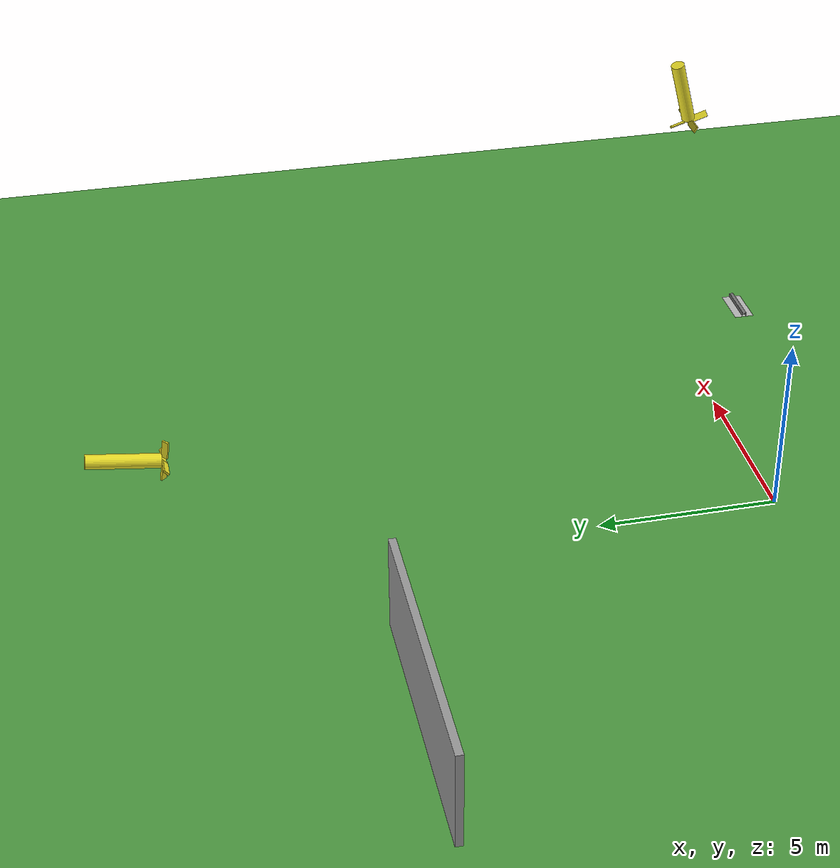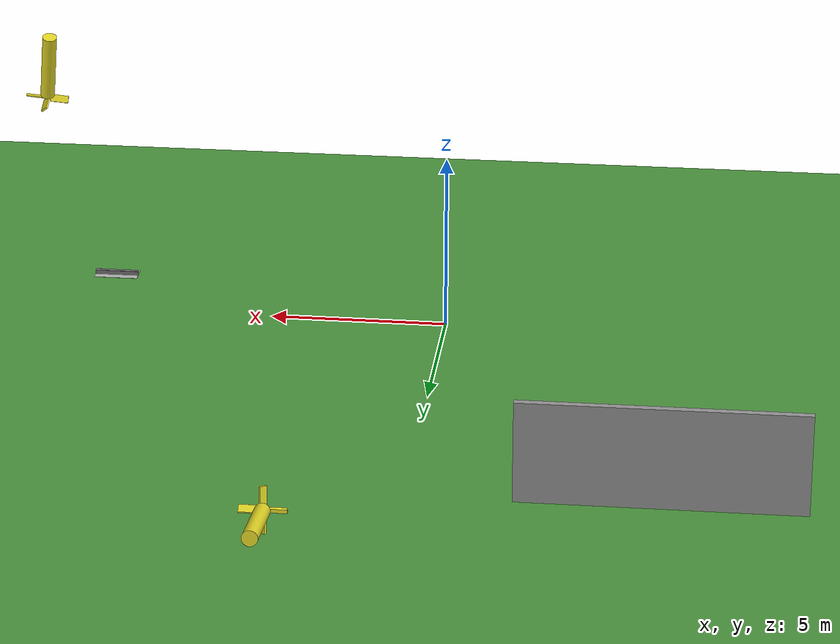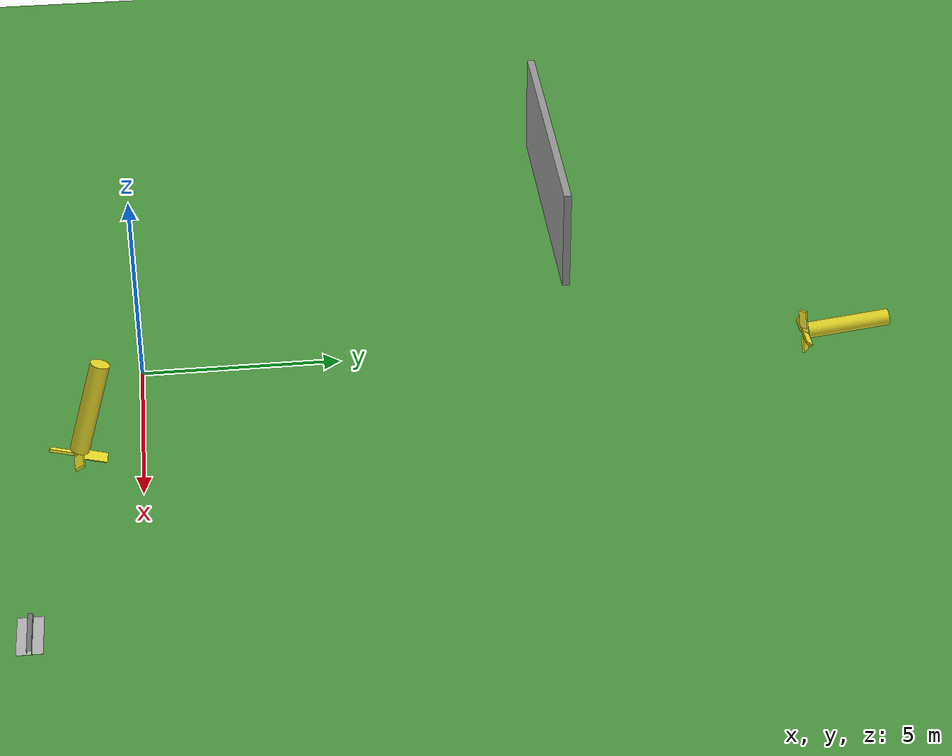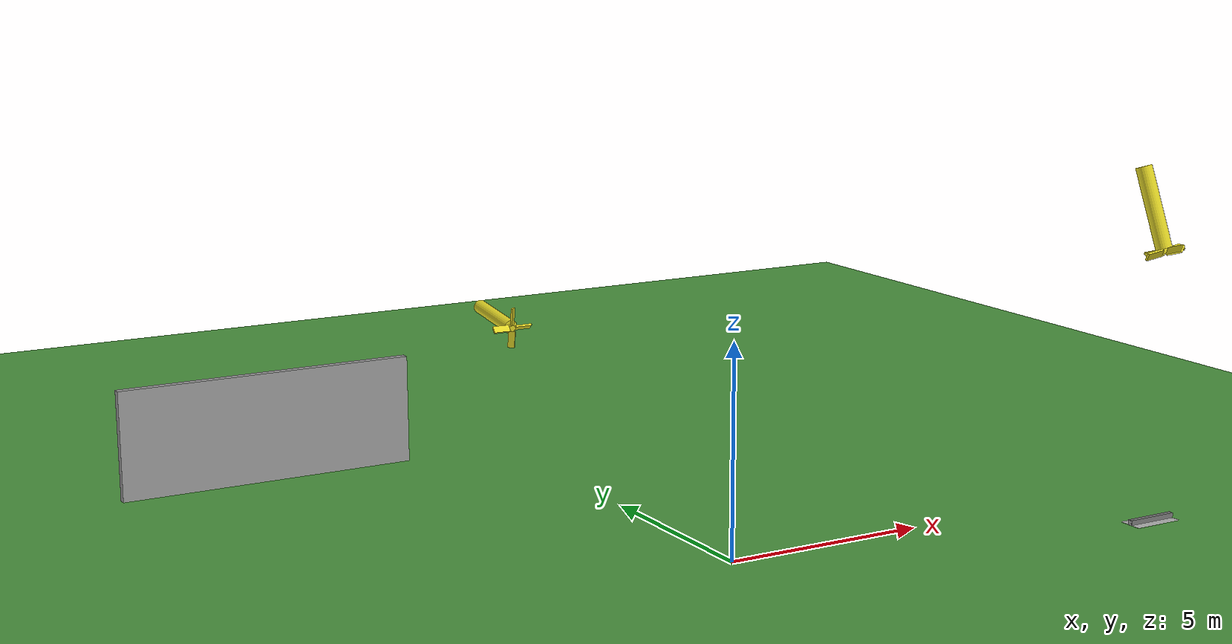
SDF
<sdf version="1.6">
 <world name="default">
  <light name="sun" type="directional">
   <pose>0 0 10 0 -0 0</pose>
   <diffuse>0.8 0.8 0.8 1</diffuse>
   <specular>0.2 0.2 0.2 1</specular>
   <attenuation>
    <range>1000</range>
    <constant>0.9</constant>
    <linear>0.01</linear>
    <quadratic>0.001</quadratic>
   </attenuation>
   <direction>-0.5 0.1 -0.9</direction>
  </light>
  <model name="ground_plane">
   <static>1</static>
   <link name="link">
    <collision name="collision">
     <geometry><plane><normal>0 0 1</normal><size>100 100</size></plane></geometry>
     <surface>
      <contact><collide_bitmask>65535</collide_bitmask></contact>
      <friction><ode><mu>100</mu><mu2>50</mu2></ode></friction>
     </surface>
    </collision>
    <visual name="visual">
     <cast_shadows>0</cast_shadows>
     <geometry><plane><normal>0 0 1</normal><size>100 100</size></plane></geometry>
     <material>
      <script><uri>file://media/materials/scripts/gazebo.material</uri><name>Gazebo/Grey</name></script>
     </material>
    </visual>
   </link>
  </model>
  <gravity>0 0 -9.8</gravity>
  <magnetic_field>6e-06 2.3e-05 -4.2e-05</magnetic_field>
  <atmosphere type="adiabatic"/>
  <physics name="default_physics" default="0" type="ode">
   <max_step_size>0.004</max_step_size>
   <real_time_factor>1</real_time_factor>
   <real_time_update_rate>250</real_time_update_rate>
  </physics>
  <scene><ambient>0.4 0.4 0.4 1</ambient><background>0.7 0.7 0.7 1</background><shadows>1</shadows></scene>
  <spherical_coordinates>
   <surface_model>EARTH_WGS84</surface_model>
   <latitude_deg>0</latitude_deg>
   <longitude_deg>0</longitude_deg>
   <elevation>0</elevation>
   <heading_deg>0</heading_deg>
  </spherical_coordinates>
  <model name="grass_plane">
   <static>1</static>
   <link name="link">
    <collision name="collision"><geometry><box><size>80 80 0.1</size></box></geometry></collision>
    <visual name="visual">
     <cast_shadows>0</cast_shadows>
     <geometry><box><size>80 80 0.1</size></box></geometry>
     <material>
      <script>
       <uri>model://grass_plane/materials/scripts</uri>
       <uri>model://grass_plane/materials/textures</uri>
       <name>vrc/grass</name>
      </script>
     </material>
    </visual>
   </link>
   <pose>-0.036934 0.015887 0 0 -0 0</pose>
  </model>
  <model name="frc2016_rockwall">
   <static>1</static>
   <link name="link">
    <inertial>
     <mass>10</mass>
     <pose>0 0 0.08974 0 -0 0</pose>
     <inertia><ixx>0.327091</ixx><ixy>0</ixy><ixz>0</ixz><iyy>1.37417</iyy><iyz>0</iyz><izz>1.64109</izz></inertia>
    </inertial>
    <visual name="platform">
     <pose>0 0 0.06432 0 -0 0</pose>
     <geometry><box><size>1.27 0.5969 0.003175</size></box></geometry>
    </visual>
    <collision name="platform">
     <pose>0 0 0.06432 0 -0 0</pose>
     <geometry><box><size>1.27 0.5969 0.003175</size></box></geometry>
    </collision>
    <visual name="up1">
     <pose>0 0.05166 0.12537 0 -0 0</pose>
     <geometry><box><size>1.27 0.00462 0.11892</size></box></geometry>
     <material><ambient>0.46 0.46 0.46 1</ambient><diffuse>0.46 0.46 0.46 1</diffuse></material>
    </visual>
    <collision name="up1">
     <pose>0 0.05166 0.12537 0 -0 0</pose>
     <geometry><box><size>1.27 0.00462 0.11892</size></box></geometry>
    </collision>
    <visual name="up2">
     <pose>0 -0.05801 0.12537 0 -0 0</pose>
     <geometry><box><size>1.27 0.00462 0.11892</size></box></geometry>
     <material><ambient>0.46 0.46 0.46 1</ambient><diffuse>0.46 0.46 0.46 1</diffuse></material>
    </visual>
    <collision name="up2">
     <pose>0 -0.05801 0.12537 0 -0 0</pose>
     <geometry><box><size>1.27 0.00462 0.11892</size></box></geometry>
    </collision>
    <visual name="top">
     <pose>0 -0.00249 0.18252 0 -0 0</pose>
     <geometry><box><size>1.27 0.1143 0.00462</size></box></geometry>
     <material><ambient>0.46 0.46 0.46 1</ambient><diffuse>0.46 0.46 0.46 1</diffuse></material>
    </visual>
    <collision name="top">
     <pose>0 -0.00249 0.18252 0 -0 0</pose>
     <geometry><box><size>1.27 0.1143 0.00462</size></box></geometry>
    </collision>
   </link>
   <pose>9.96882 -2.52841 0 0 -0 0</pose>
  </model>
  <model name="submarine">
   <pose>11.3594 -0.63969 7.09998 2.85091 -0.108833 0.069325</pose>
   <link name="body">
    <inertial>
     <mass>251.327</mass>
     <inertia><ixx>86.2891</ixx><ixy>0</ixy><ixz>0</ixz><iyy>86.2891</iyy><iyz>0</iyz><izz>5.02655</izz></inertia>
    </inertial>
    <visual name="body_visual">
     <geometry><cylinder><radius>0.2</radius><length>2</length></cylinder></geometry>
     <material>
      <script><uri>file://media/materials/scripts/gazebo.material</uri><name>Gazebo/Yellow</name></script>
     </material>
    </visual>
    <collision name="body_collision">
     <geometry><cylinder><radius>0.2</radius><length>2</length></cylinder></geometry>
    </collision>
    <visual name="spacer_visual">
     <pose>0 0 1.05855 0 -0 0</pose>
     <geometry><cylinder><radius>0.0933402</radius><length>0.127211</length></cylinder></geometry>
     <material>
      <script><uri>file://media/materials/scripts/gazebo.material</uri><name>Gazebo/Yellow</name></script>
     </material>
    </visual>
   </link>
   <link name="propeller">
    <pose>0 0 1.09 3.14159 -0 0</pose>
    <inertial>
     <mass>21.82</mass>
     <inertia>
      <ixx>0.459994</ixx>
      <ixy>0</ixy>
      <ixz>0</ixz>
      <iyy>0.459994</iyy>
      <iyz>0</iyz>
      <izz>0.909167</izz>
     </inertia>
    </inertial>
    <visual name="blade1_visual">
     <pose>0.34334 0 0 0.785398 -0 0</pose>
     <geometry><box><size>0.5 0.2 0.05455</size></box></geometry>
     <material>
      <script><uri>file://media/materials/scripts/gazebo.material</uri><name>Gazebo/Yellow</name></script>
     </material>
    </visual>
    <collision name="blade1_collision">
     <pose>0.34334 0 0 0.785398 -0 0</pose>
     <geometry><box><size>0.5 0.2 0.05455</size></box></geometry>
    </collision>
    <visual name="blade2_visual">
     <pose>0 0.34334 0 0.785398 0 1.5708</pose>
     <geometry><box><size>0.5 0.2 0.05455</size></box></geometry>
     <material>
      <script><uri>file://media/materials/scripts/gazebo.material</uri><name>Gazebo/Yellow</name></script>
     </material>
    </visual>
    <collision name="blade2_collision">
     <pose>0 0.34334 0 0.785398 0 1.5708</pose>
     <geometry><box><size>0.5 0.2 0.05455</size></box></geometry>
    </collision>
    <visual name="blade3_visual">
     <pose>-0.34334 -0 0 -0.785398 0 0</pose>
     <geometry><box><size>0.5 0.2 0.05455</size></box></geometry>
     <material>
      <script><uri>file://media/materials/scripts/gazebo.material</uri><name>Gazebo/Yellow</name></script>
     </material>
    </visual>
    <collision name="blade3_collision">
     <pose>-0.34334 -0 0 -0.785398 0 0</pose>
     <geometry><box><size>0.5 0.2 0.05455</size></box></geometry>
    </collision>
    <visual name="blade4_visual">
     <pose>-0 -0.34334 0 -0.785398 -0 1.5708</pose>
     <geometry><box><size>0.5 0.2 0.05455</size></box></geometry>
     <material>
      <script><uri>file://media/materials/scripts/gazebo.material</uri><name>Gazebo/Yellow</name></script>
     </material>
    </visual>
    <collision name="blade4_collision">
     <pose>-0 -0.34334 0 -0.785398 -0 1.5708</pose>
     <geometry><box><size>0.5 0.2 0.05455</size></box></geometry>
    </collision>
   </link>
   <joint name="spinning_joint" type="revolute">
    <parent>body</parent>
    <child>propeller</child>
    <axis>
     <xyz>0 0 1</xyz>
     <use_parent_model_frame>1</use_parent_model_frame>
     <limit><lower>-1e+12</lower><upper>1e+12</upper><effort>-1</effort><velocity>-1</velocity></limit>
     <dynamics><spring_reference>0</spring_reference><spring_stiffness>0</spring_stiffness></dynamics>
    </axis>
   </joint>
   <plugin name="submarine_propeller_1" filename="libLiftDragPlugin.so">
    <air_density>1000</air_density>
    <cla>1.2535816618911175</cla>
    <cla_stall>-1.4326647564469914</cla_stall>
    <cda>0</cda>
    <cda_stall>1.4326647564469914</cda_stall>
    <alpha_stall>1.396</alpha_stall>
    <a0>0</a0>
    <area>0.27637</area>
    <upward>0 -0.7071067811865476 -0.7071067811865475</upward>
    <forward>0 -0.7071067811865475 0.7071067811865476</forward>
    <link_name>propeller</link_name>
    <cp>0.35 0 0</cp>
   </plugin>
   <plugin name="submarine_propeller_2" filename="libLiftDragPlugin.so">
    <air_density>1000</air_density>
    <cla>1.2535816618911175</cla>
    <cla_stall>-1.4326647564469914</cla_stall>
    <cda>0</cda>
    <cda_stall>1.4326647564469914</cda_stall>
    <alpha_stall>1.396</alpha_stall>
    <a0>0</a0>
    <area>0.27637</area>
    <upward>-0.7071067811865475 0 -0.7071067811865476</upward>
    <forward>-0.7071067811865476 0 0.7071067811865475</forward>
    <link_name>propeller</link_name>
    <cp>0 -0.35 0</cp>
   </plugin>
   <plugin name="submarine_propeller_3" filename="libLiftDragPlugin.so">
    <air_density>1000</air_density>
    <cla>1.2535816618911175</cla>
    <cla_stall>-1.4326647564469914</cla_stall>
    <cda>0</cda>
    <cda_stall>1.4326647564469914</cda_stall>
    <alpha_stall>1.396</alpha_stall>
    <a0>0</a0>
    <area>0.27637</area>
    <upward>0 0.7071067811865475 -0.7071067811865476</upward>
    <forward>0 -0.7071067811865476 -0.7071067811865475</forward>
    <link_name>propeller</link_name>
    <cp>-0.35 0 0</cp>
   </plugin>
   <plugin name="submarine_propeller_4" filename="libLiftDragPlugin.so">
    <air_density>1000</air_density>
    <cla>1.2535816618911175</cla>
    <cla_stall>-1.4326647564469914</cla_stall>
    <cda>0</cda>
    <cda_stall>1.4326647564469914</cda_stall>
    <alpha_stall>1.396</alpha_stall>
    <a0>0</a0>
    <area>0.27637</area>
    <upward>0.7071067811865476 0 -0.7071067811865475</upward>
    <forward>0.7071067811865475 0 0.7071067811865476</forward>
    <link_name>propeller</link_name>
    <cp>0 0.35 0</cp>
   </plugin>
   <plugin name="buoyancy" filename="libBuoyancyPlugin.so"><fluid_density>1000</fluid_density></plugin>
  </model>
  <model name="grey_wall">
   <static>1</static>
   <link name="link">
    <pose>0 0 1.4 0 -0 0</pose>
    <collision name="collision"><geometry><box><size>7.5 0.2 2.8</size></box></geometry></collision>
    <visual name="visual">
     <cast_shadows>0</cast_shadows>
     <geometry><box><size>7.5 0.2 2.8</size></box></geometry>
     <material>
      <script>
       <uri>model://grey_wall/materials/scripts</uri>
       <uri>model://grey_wall/materials/textures</uri>
       <name>vrc/grey_wall</name>
      </script>
     </material>
    </visual>
   </link>
   <pose>-6.55008 11.1853 0 0 -0 0</pose>
  </model>
  <model name="submarine_0">
   <pose>2.80373 17.3429 2.1034 1.69811 -0 0</pose>
   <link name="body">
    <inertial>
     <mass>251.327</mass>
     <inertia><ixx>86.2891</ixx><ixy>0</ixy><ixz>0</ixz><iyy>86.2891</iyy><iyz>0</iyz><izz>5.02655</izz></inertia>
    </inertial>
    <visual name="body_visual">
     <geometry><cylinder><radius>0.2</radius><length>2</length></cylinder></geometry>
     <material>
      <script><uri>file://media/materials/scripts/gazebo.material</uri><name>Gazebo/Yellow</name></script>
     </material>
    </visual>
    <collision name="body_collision">
     <geometry><cylinder><radius>0.2</radius><length>2</length></cylinder></geometry>
    </collision>
    <visual name="spacer_visual">
     <pose>0 0 1.05855 0 -0 0</pose>
     <geometry><cylinder><radius>0.0933402</radius><length>0.127211</length></cylinder></geometry>
     <material>
      <script><uri>file://media/materials/scripts/gazebo.material</uri><name>Gazebo/Yellow</name></script>
     </material>
    </visual>
   </link>
   <link name="propeller">
    <pose>0 0 1.09 3.14159 -0 0</pose>
    <inertial>
     <mass>21.82</mass>
     <inertia>
      <ixx>0.459994</ixx>
      <ixy>0</ixy>
      <ixz>0</ixz>
      <iyy>0.459994</iyy>
      <iyz>0</iyz>
      <izz>0.909167</izz>
     </inertia>
    </inertial>
    <visual name="blade1_visual">
     <pose>0.34334 0 0 0.785398 -0 0</pose>
     <geometry><box><size>0.5 0.2 0.05455</size></box></geometry>
     <material>
      <script><uri>file://media/materials/scripts/gazebo.material</uri><name>Gazebo/Yellow</name></script>
     </material>
    </visual>
    <collision name="blade1_collision">
     <pose>0.34334 0 0 0.785398 -0 0</pose>
     <geometry><box><size>0.5 0.2 0.05455</size></box></geometry>
    </collision>
    <visual name="blade2_visual">
     <pose>0 0.34334 0 0.785398 0 1.5708</pose>
     <geometry><box><size>0.5 0.2 0.05455</size></box></geometry>
     <material>
      <script><uri>file://media/materials/scripts/gazebo.material</uri><name>Gazebo/Yellow</name></script>
     </material>
    </visual>
    <collision name="blade2_collision">
     <pose>0 0.34334 0 0.785398 0 1.5708</pose>
     <geometry><box><size>0.5 0.2 0.05455</size></box></geometry>
    </collision>
    <visual name="blade3_visual">
     <pose>-0.34334 -0 0 -0.785398 0 0</pose>
     <geometry><box><size>0.5 0.2 0.05455</size></box></geometry>
     <material>
      <script><uri>file://media/materials/scripts/gazebo.material</uri><name>Gazebo/Yellow</name></script>
     </material>
    </visual>
    <collision name="blade3_collision">
     <pose>-0.34334 -0 0 -0.785398 0 0</pose>
     <geometry><box><size>0.5 0.2 0.05455</size></box></geometry>
    </collision>
    <visual name="blade4_visual">
     <pose>-0 -0.34334 0 -0.785398 -0 1.5708</pose>
     <geometry><box><size>0.5 0.2 0.05455</size></box></geometry>
     <material>
      <script><uri>file://media/materials/scripts/gazebo.material</uri><name>Gazebo/Yellow</name></script>
     </material>
    </visual>
    <collision name="blade4_collision">
     <pose>-0 -0.34334 0 -0.785398 -0 1.5708</pose>
     <geometry><box><size>0.5 0.2 0.05455</size></box></geometry>
    </collision>
   </link>
   <joint name="spinning_joint" type="revolute">
    <parent>body</parent>
    <child>propeller</child>
    <axis>
     <xyz>0 0 1</xyz>
     <use_parent_model_frame>1</use_parent_model_frame>
     <limit><lower>-1e+12</lower><upper>1e+12</upper><effort>-1</effort><velocity>-1</velocity></limit>
     <dynamics><spring_reference>0</spring_reference><spring_stiffness>0</spring_stiffness></dynamics>
    </axis>
   </joint>
   <plugin name="submarine_propeller_1" filename="libLiftDragPlugin.so">
    <air_density>1000</air_density>
    <cla>1.2535816618911175</cla>
    <cla_stall>-1.4326647564469914</cla_stall>
    <cda>0</cda>
    <cda_stall>1.4326647564469914</cda_stall>
    <alpha_stall>1.396</alpha_stall>
    <a0>0</a0>
    <area>0.27637</area>
    <upward>0 -0.7071067811865476 -0.7071067811865475</upward>
    <forward>0 -0.7071067811865475 0.7071067811865476</forward>
    <link_name>propeller</link_name>
    <cp>0.35 0 0</cp>
   </plugin>
   <plugin name="submarine_propeller_2" filename="libLiftDragPlugin.so">
    <air_density>1000</air_density>
    <cla>1.2535816618911175</cla>
    <cla_stall>-1.4326647564469914</cla_stall>
    <cda>0</cda>
    <cda_stall>1.4326647564469914</cda_stall>
    <alpha_stall>1.396</alpha_stall>
    <a0>0</a0>
    <area>0.27637</area>
    <upward>-0.7071067811865475 0 -0.7071067811865476</upward>
    <forward>-0.7071067811865476 0 0.7071067811865475</forward>
    <link_name>propeller</link_name>
    <cp>0 -0.35 0</cp>
   </plugin>
   <plugin name="submarine_propeller_3" filename="libLiftDragPlugin.so">
    <air_density>1000</air_density>
    <cla>1.2535816618911175</cla>
    <cla_stall>-1.4326647564469914</cla_stall>
    <cda>0</cda>
    <cda_stall>1.4326647564469914</cda_stall>
    <alpha_stall>1.396</alpha_stall>
    <a0>0</a0>
    <area>0.27637</area>
    <upward>0 0.7071067811865475 -0.7071067811865476</upward>
    <forward>0 -0.7071067811865476 -0.7071067811865475</forward>
    <link_name>propeller</link_name>
    <cp>-0.35 0 0</cp>
   </plugin>
   <plugin name="submarine_propeller_4" filename="libLiftDragPlugin.so">
    <air_density>1000</air_density>
    <cla>1.2535816618911175</cla>
    <cla_stall>-1.4326647564469914</cla_stall>
    <cda>0</cda>
    <cda_stall>1.4326647564469914</cda_stall>
    <alpha_stall>1.396</alpha_stall>
    <a0>0</a0>
    <area>0.27637</area>
    <upward>0.7071067811865476 0 -0.7071067811865475</upward>
    <forward>0.7071067811865475 0 0.7071067811865476</forward>
    <link_name>propeller</link_name>
    <cp>0 0.35 0</cp>
   </plugin>
   <plugin name="buoyancy" filename="libBuoyancyPlugin.so"><fluid_density>1000</fluid_density></plugin>
  </model>
 </world>
</sdf>
